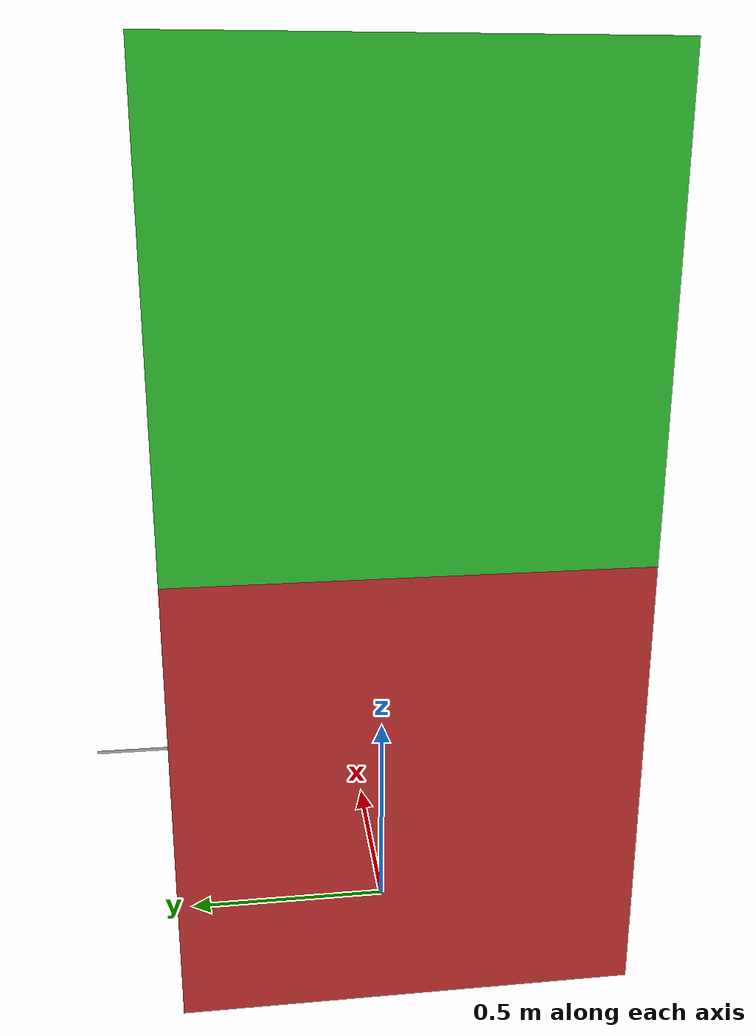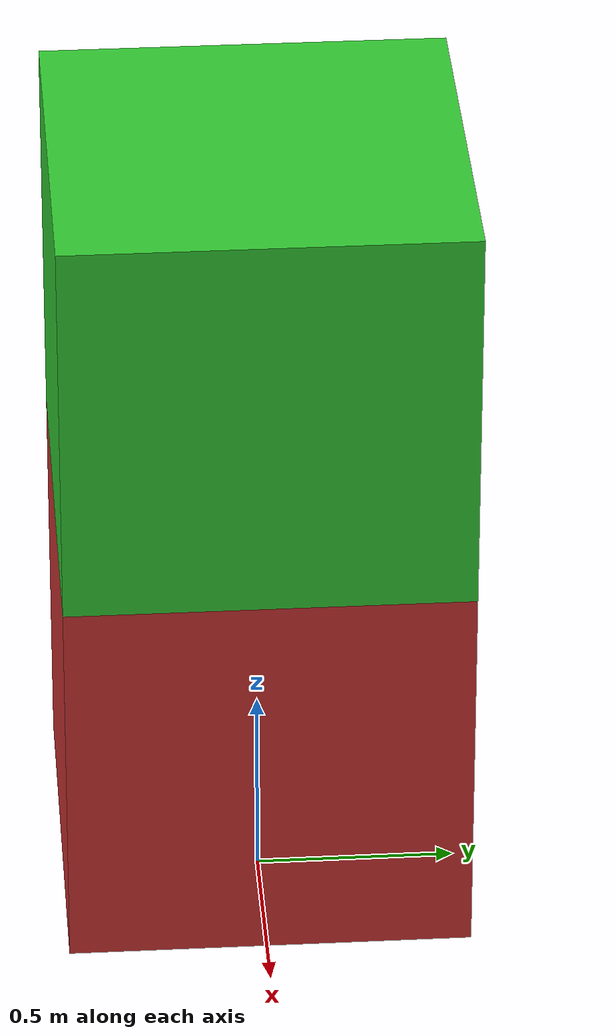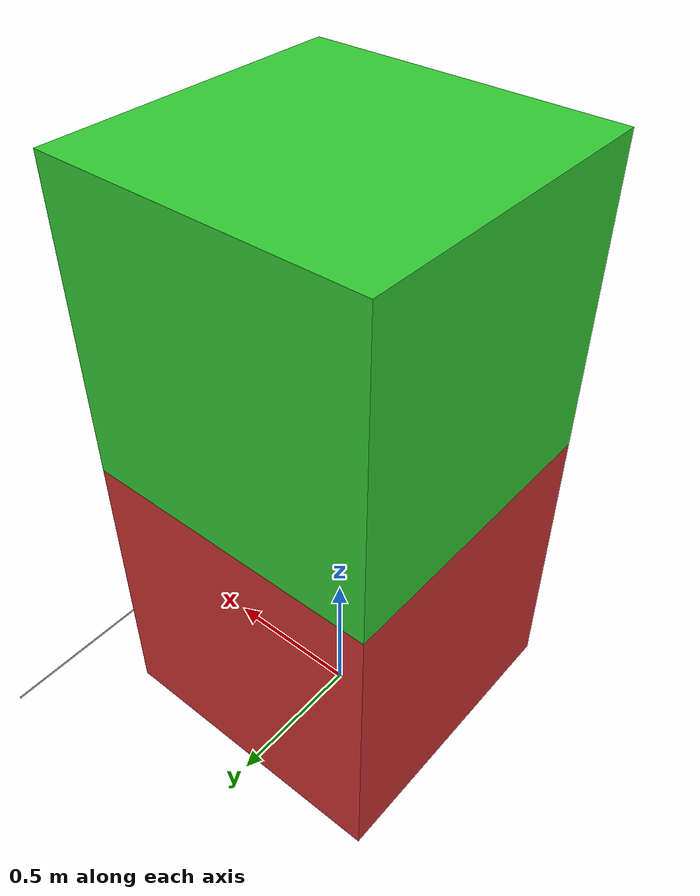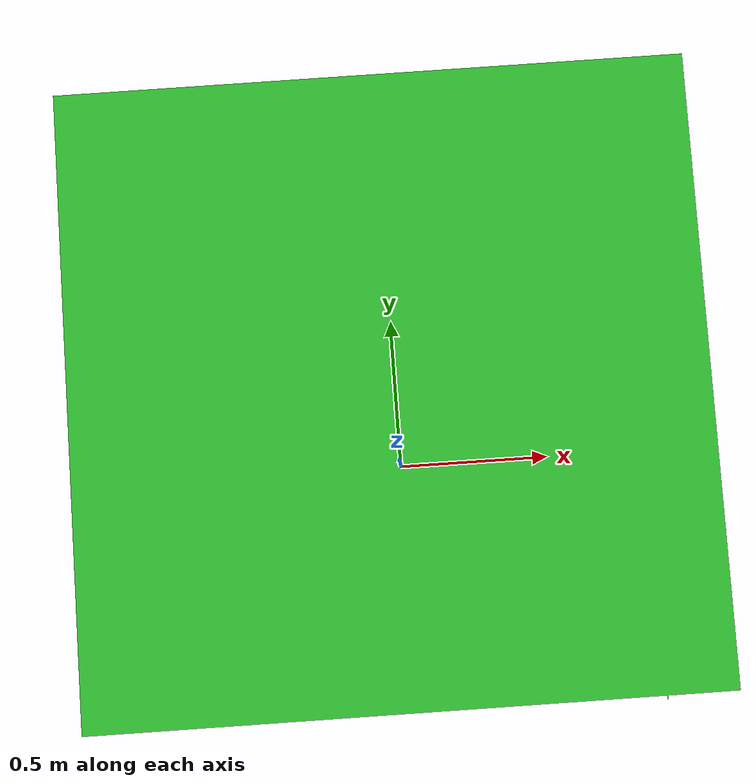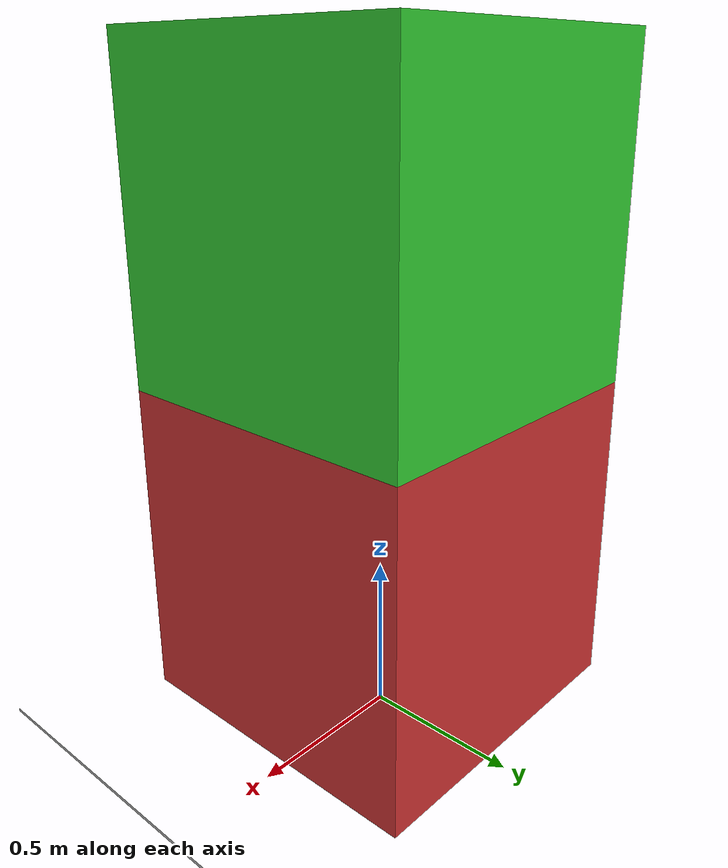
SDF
<?xml version="1.0" ?>
<sdf version="1.6">
  <world name="default">

    <plugin filename="libignition-gazebo-contact-system.so"
      name="ignition::gazebo::systems::Contact">
    </plugin>

    <model name="box1">
      <pose>0 0 0.6 0 0 0</pose>
      <link name="box_body">
        <visual name="v1">
          <geometry>
            <box><size>1 1 1</size></box>
          </geometry>
          <material>
            <diffuse>0.8 0.2 0.2 1</diffuse>
            <specular>1.0 0 0 1</specular>
          </material>
        </visual>
        <collision name="c1">
          <geometry>
            <box><size>1 1 1</size></box>
          </geometry>
        </collision>
      </link>
    </model>

    <model name="box2">
      <pose>0 0 1.6 0 0 0</pose>
      <link name="box2_body">
        <visual name="v1">
          <geometry>
            <box><size>1 1 1</size></box>
          </geometry>
          <material>
            <diffuse>0.2 0.8 0.2 1</diffuse>
            <specular>1.0 0 0 1</specular>
          </material>
        </visual>
        <collision name="c2">
          <geometry>
            <box><size>1 1 1</size></box>
          </geometry>
        </collision>
      </link>
      <plugin filename="/home/david/workspace/src/ign-gazebo/examples/plugin/AttacherContact/build/libAttacherContact.so"
            name="attacher_contact::AttacherContact">
        <namespace>box2</namespace>
        <time>0.001</time>
        <enabled>true</enabled>
      </plugin>
    </model>

    <model name="trigger">
      <pose>3 0 0 0 0 0</pose>
      <static>true</static>
      <link name="body">
        <visual name="v1">
          <geometry>
            <box><size>0.1 10 0.01</size></box>
          </geometry>
        </visual>
        <collision name="c1">
          <geometry>
            <box><size>0.1 10 0.01</size></box>
          </geometry>
        </collision>
      </link>
    </model>
  </world>
</sdf>
